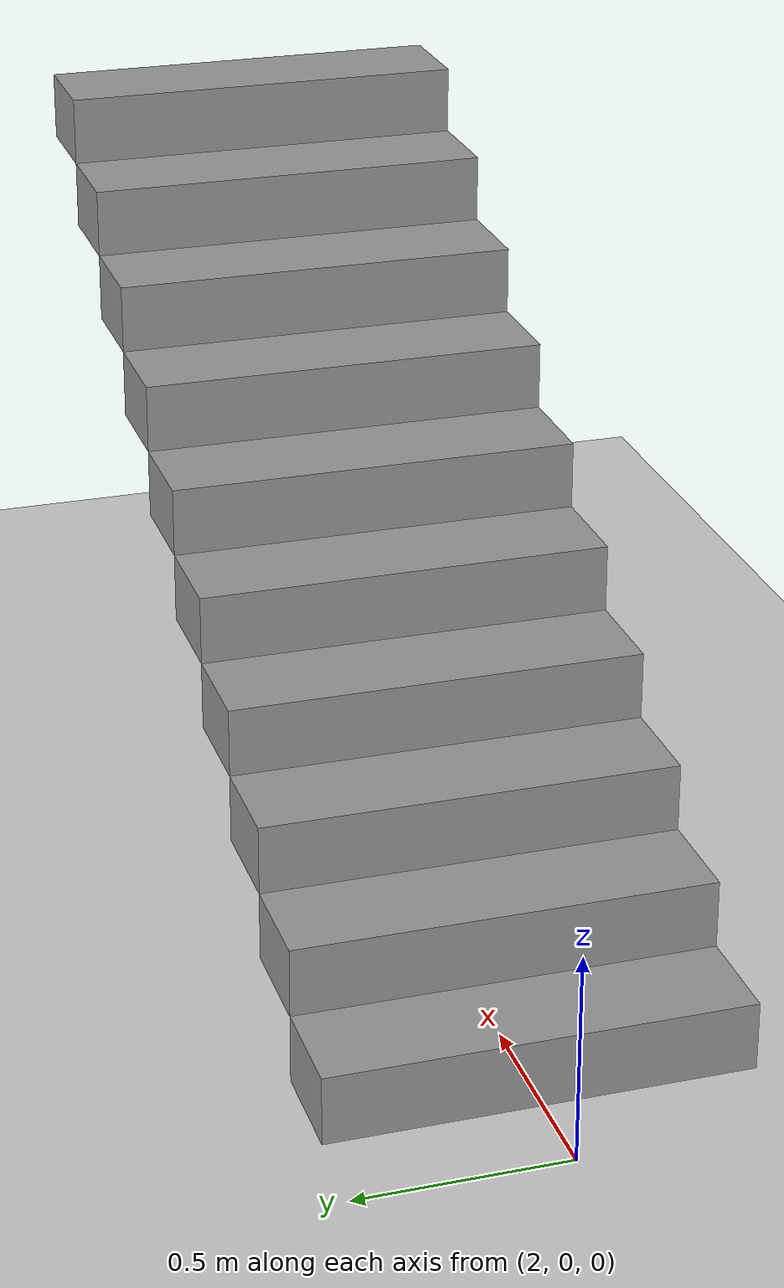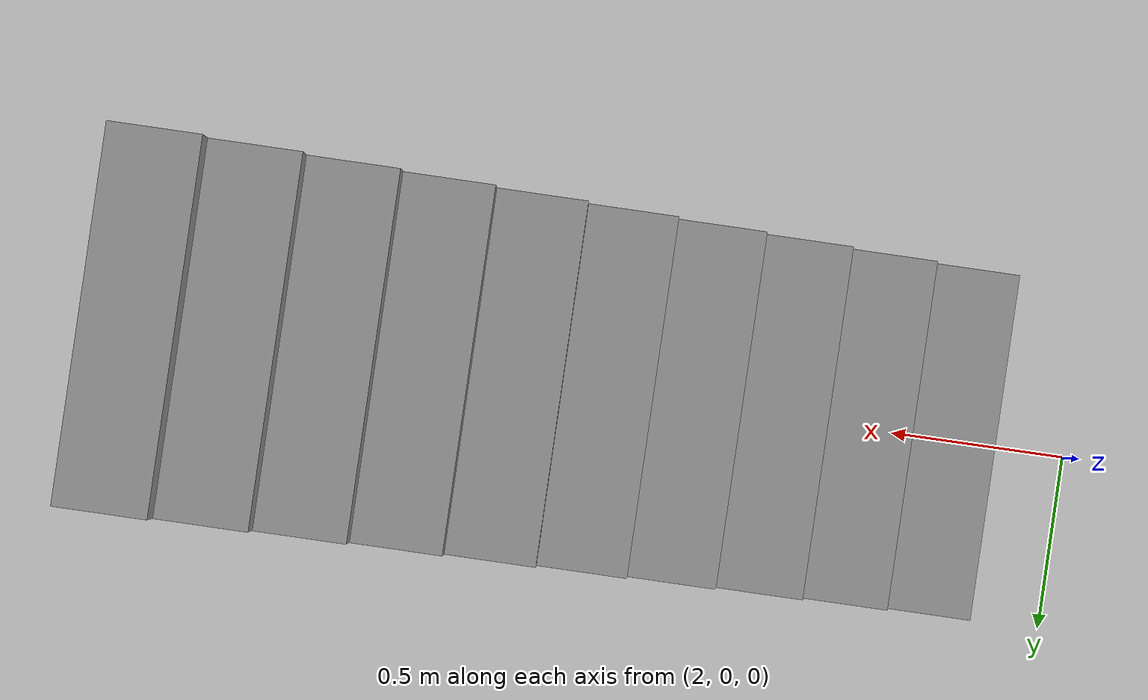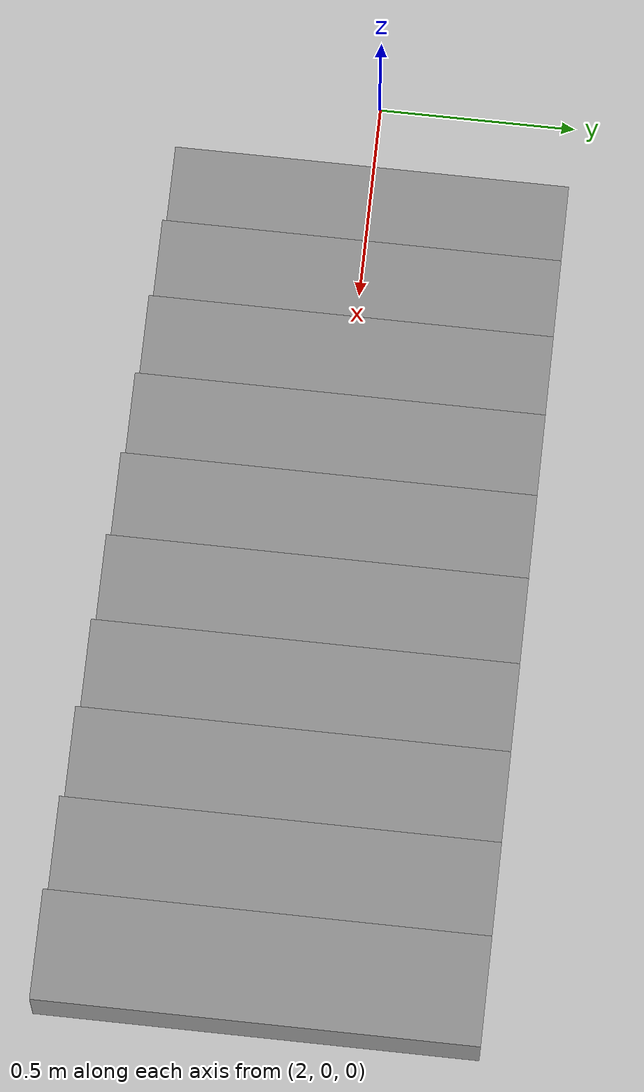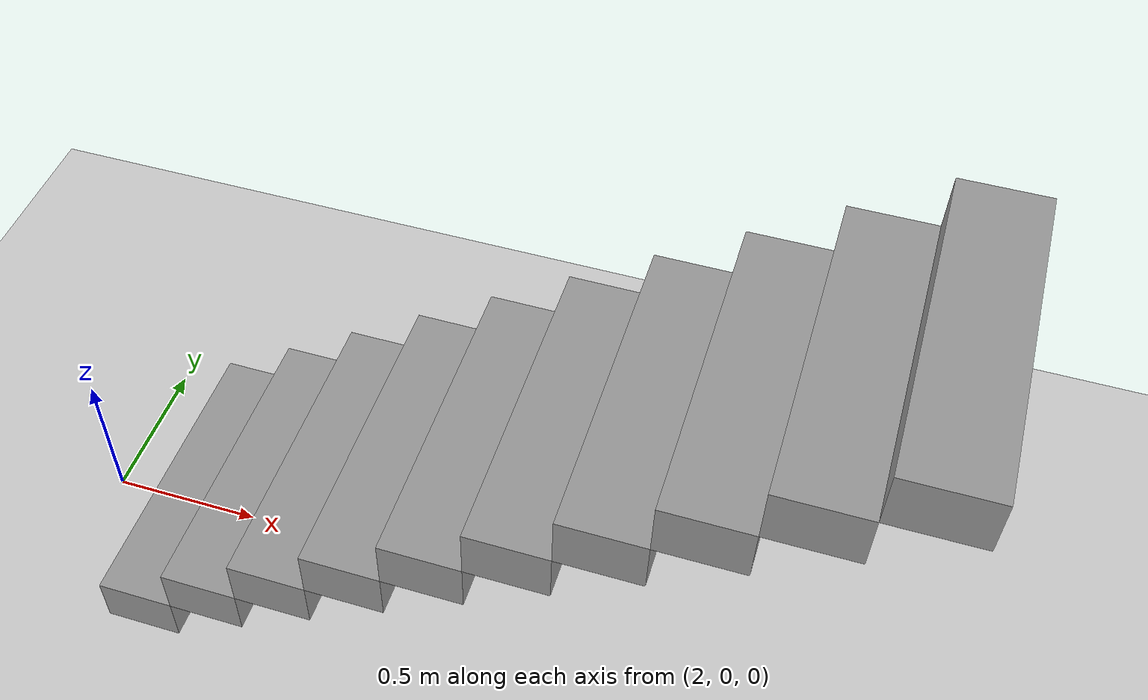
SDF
<sdf version='1.6'>
  <world name='default'>
    <physics name='default_physics' default='0' type='ode'>
      <max_step_size>0.0003</max_step_size>
      <real_time_update_rate>-1</real_time_update_rate>
      <ode>
        <solver>
          <iters>300</iters>
          <type>quick</type>
          <sor>1.3</sor>
          <use_dynamic_moi_rescaling>0</use_dynamic_moi_rescaling>
        </solver>
        <constraints>
          <cfm>0</cfm>
          <erp>0.2</erp>
          <contact_max_correcting_vel>100</contact_max_correcting_vel>
          <contact_surface_layer>0.001</contact_surface_layer>
        </constraints>
      </ode>
      <real_time_factor>1</real_time_factor>
    </physics>
    <model name='ground_plane'>
      <static>1</static>
      <link name='link'>
        <collision name='collision'>
          <geometry>
            <plane>
              <normal>0 0 1</normal>
              <size>100 100</size>
            </plane>
          </geometry>
          <surface>
            <contact>
              <collide_bitmask>65535</collide_bitmask>
              <ode/>
            </contact>
            <friction>
              <ode>
                <mu>100</mu>
                <mu2>50</mu2>
              </ode>
              <torsional>
                <ode/>
              </torsional>
            </friction>
            <bounce/>
          </surface>
          <max_contacts>10</max_contacts>
        </collision>
        <visual name='visual'>
          <cast_shadows>0</cast_shadows>
          <geometry>
            <plane>
              <normal>0 0 1</normal>
              <size>100 100</size>
            </plane>
          </geometry>
          <material>
            <script>
              <uri>file://media/materials/scripts/gazebo.material</uri>
              <name>Gazebo/Grey</name>
            </script>
          </material>
        </visual>
        <self_collide>0</self_collide>
        <enable_wind>0</enable_wind>
        <kinematic>0</kinematic>
      </link>
    </model>
    <light name='sun' type='directional'>
      <cast_shadows>1</cast_shadows>
      <pose frame=''>0 0 10 0 -0 0</pose>
      <diffuse>0.8 0.8 0.8 1</diffuse>
      <specular>0.2 0.2 0.2 1</specular>
      <attenuation>
        <range>1000</range>
        <constant>0.9</constant>
        <linear>0.01</linear>
        <quadratic>0.001</quadratic>
      </attenuation>
      <direction>-0.5 0.1 -0.9</direction>
    </light>
    <gravity>0 0 -9.8</gravity>

    <model name='deeper_stairs'>
      <pose frame=''>3.46 0 0 0 -0 0</pose>
      <link name='Stairs_2'>
        <visual name='Stairs_2_Visual_0'>
          <pose frame=''>-1.125 -0 0.0833 0 -0 1.5708</pose>
          <geometry>
            <box>
              <size>1 0.25 0.1666</size>
            </box>
          </geometry>
          <material>
            <script>
              <uri>file://media/materials/scripts/gazebo.material</uri>
              <name>Gazebo/Grey</name>
            </script>
            <ambient>1 1 1 1</ambient>
          </material>
          <meta>
            <layer>0</layer>
          </meta>
        </visual>
        <collision name='Stairs_2_Collision_0'>
          <geometry>
            <box>
              <size>1 0.25 0.1666</size>
            </box>
          </geometry>
          <pose frame=''>-1.125 -0 0.0833 0 -0 1.5708</pose>
          <max_contacts>10</max_contacts>
          <surface>
            <contact>
              <ode/>
            </contact>
            <bounce/>
            <friction>
              <torsional>
                <ode/>
              </torsional>
              <ode/>
            </friction>
          </surface>
        </collision>
        <visual name='Stairs_2_Visual_1'>
          <pose frame=''>-0.875 -0 0.2499 0 -0 1.5708</pose>
          <geometry>
            <box>
              <size>1 0.25 0.1666</size>
            </box>
          </geometry>
          <material>
            <script>
              <uri>file://media/materials/scripts/gazebo.material</uri>
              <name>Gazebo/Grey</name>
            </script>
            <ambient>1 1 1 1</ambient>
          </material>
          <meta>
            <layer>0</layer>
          </meta>
        </visual>
        <collision name='Stairs_2_Collision_1'>
          <geometry>
            <box>
              <size>1 0.25 0.1666</size>
            </box>
          </geometry>
          <pose frame=''>-0.875 -0 0.2499 0 -0 1.5708</pose>
          <max_contacts>10</max_contacts>
          <surface>
            <contact>
              <ode/>
            </contact>
            <bounce/>
            <friction>
              <torsional>
                <ode/>
              </torsional>
              <ode/>
            </friction>
          </surface>
        </collision>
        <visual name='Stairs_2_Visual_2'>
          <pose frame=''>-0.625 -0 0.4165 0 -0 1.5708</pose>
          <geometry>
            <box>
              <size>1 0.25 0.1666</size>
            </box>
          </geometry>
          <material>
            <script>
              <uri>file://media/materials/scripts/gazebo.material</uri>
              <name>Gazebo/Grey</name>
            </script>
            <ambient>1 1 1 1</ambient>
          </material>
          <meta>
            <layer>0</layer>
          </meta>
        </visual>
        <collision name='Stairs_2_Collision_2'>
          <geometry>
            <box>
              <size>1 0.25 0.1666</size>
            </box>
          </geometry>
          <pose frame=''>-0.625 -0 0.4165 0 -0 1.5708</pose>
          <max_contacts>10</max_contacts>
          <surface>
            <contact>
              <ode/>
            </contact>
            <bounce/>
            <friction>
              <torsional>
                <ode/>
              </torsional>
              <ode/>
            </friction>
          </surface>
        </collision>
        <visual name='Stairs_2_Visual_3'>
          <pose frame=''>-0.375 -0 0.5831 0 -0 1.5708</pose>
          <geometry>
            <box>
              <size>1 0.25 0.1666</size>
            </box>
          </geometry>
          <material>
            <script>
              <uri>file://media/materials/scripts/gazebo.material</uri>
              <name>Gazebo/Grey</name>
            </script>
            <ambient>1 1 1 1</ambient>
          </material>
          <meta>
            <layer>0</layer>
          </meta>
        </visual>
        <collision name='Stairs_2_Collision_3'>
          <geometry>
            <box>
              <size>1 0.25 0.1666</size>
            </box>
          </geometry>
          <pose frame=''>-0.375 -0 0.5831 0 -0 1.5708</pose>
          <max_contacts>10</max_contacts>
          <surface>
            <contact>
              <ode/>
            </contact>
            <bounce/>
            <friction>
              <torsional>
                <ode/>
              </torsional>
              <ode/>
            </friction>
          </surface>
        </collision>
        <visual name='Stairs_2_Visual_4'>
          <pose frame=''>-0.125 -0 0.7497 0 -0 1.5708</pose>
          <geometry>
            <box>
              <size>1 0.25 0.1666</size>
            </box>
          </geometry>
          <material>
            <script>
              <uri>file://media/materials/scripts/gazebo.material</uri>
              <name>Gazebo/Grey</name>
            </script>
            <ambient>1 1 1 1</ambient>
          </material>
          <meta>
            <layer>0</layer>
          </meta>
        </visual>
        <collision name='Stairs_2_Collision_4'>
          <geometry>
            <box>
              <size>1 0.25 0.1666</size>
            </box>
          </geometry>
          <pose frame=''>-0.125 -0 0.7497 0 -0 1.5708</pose>
          <max_contacts>10</max_contacts>
          <surface>
            <contact>
              <ode/>
            </contact>
            <bounce/>
            <friction>
              <torsional>
                <ode/>
              </torsional>
              <ode/>
            </friction>
          </surface>
        </collision>
        <visual name='Stairs_2_Visual_5'>
          <pose frame=''>0.125 -0 0.9163 0 -0 1.5708</pose>
          <geometry>
            <box>
              <size>1 0.25 0.1666</size>
            </box>
          </geometry>
          <material>
            <script>
              <uri>file://media/materials/scripts/gazebo.material</uri>
              <name>Gazebo/Grey</name>
            </script>
            <ambient>1 1 1 1</ambient>
          </material>
          <meta>
            <layer>0</layer>
          </meta>
        </visual>
        <collision name='Stairs_2_Collision_5'>
          <geometry>
            <box>
              <size>1 0.25 0.1666</size>
            </box>
          </geometry>
          <pose frame=''>0.125 -0 0.9163 0 -0 1.5708</pose>
          <max_contacts>10</max_contacts>
          <surface>
            <contact>
              <ode/>
            </contact>
            <bounce/>
            <friction>
              <torsional>
                <ode/>
              </torsional>
              <ode/>
            </friction>
          </surface>
        </collision>
        <visual name='Stairs_2_Visual_6'>
          <pose frame=''>0.375 -0 1.0829 0 -0 1.5708</pose>
          <geometry>
            <box>
              <size>1 0.25 0.1666</size>
            </box>
          </geometry>
          <material>
            <script>
              <uri>file://media/materials/scripts/gazebo.material</uri>
              <name>Gazebo/Grey</name>
            </script>
            <ambient>1 1 1 1</ambient>
          </material>
          <meta>
            <layer>0</layer>
          </meta>
        </visual>
        <collision name='Stairs_2_Collision_6'>
          <geometry>
            <box>
              <size>1 0.25 0.1666</size>
            </box>
          </geometry>
          <pose frame=''>0.375 -0 1.0829 0 -0 1.5708</pose>
          <max_contacts>10</max_contacts>
          <surface>
            <contact>
              <ode/>
            </contact>
            <bounce/>
            <friction>
              <torsional>
                <ode/>
              </torsional>
              <ode/>
            </friction>
          </surface>
        </collision>
        <visual name='Stairs_2_Visual_7'>
          <pose frame=''>0.625 -0 1.2495 0 -0 1.5708</pose>
          <geometry>
            <box>
              <size>1 0.25 0.1666</size>
            </box>
          </geometry>
          <material>
            <script>
              <uri>file://media/materials/scripts/gazebo.material</uri>
              <name>Gazebo/Grey</name>
            </script>
            <ambient>1 1 1 1</ambient>
          </material>
          <meta>
            <layer>0</layer>
          </meta>
        </visual>
        <collision name='Stairs_2_Collision_7'>
          <geometry>
            <box>
              <size>1 0.25 0.1666</size>
            </box>
          </geometry>
          <pose frame=''>0.625 -0 1.2495 0 -0 1.5708</pose>
          <max_contacts>10</max_contacts>
          <surface>
            <contact>
              <ode/>
            </contact>
            <bounce/>
            <friction>
              <torsional>
                <ode/>
              </torsional>
              <ode/>
            </friction>
          </surface>
        </collision>
        <visual name='Stairs_2_Visual_8'>
          <pose frame=''>0.875 0 1.4161 0 -0 1.5708</pose>
          <geometry>
            <box>
              <size>1 0.25 0.1666</size>
            </box>
          </geometry>
          <material>
            <script>
              <uri>file://media/materials/scripts/gazebo.material</uri>
              <name>Gazebo/Grey</name>
            </script>
            <ambient>1 1 1 1</ambient>
          </material>
          <meta>
            <layer>0</layer>
          </meta>
        </visual>
        <collision name='Stairs_2_Collision_8'>
          <geometry>
            <box>
              <size>1 0.25 0.1666</size>
            </box>
          </geometry>
          <pose frame=''>0.875 0 1.4161 0 -0 1.5708</pose>
          <max_contacts>10</max_contacts>
          <surface>
            <contact>
              <ode/>
            </contact>
            <bounce/>
            <friction>
              <torsional>
                <ode/>
              </torsional>
              <ode/>
            </friction>
          </surface>
        </collision>
        <visual name='Stairs_2_Visual_9'>
          <pose frame=''>1.125 0 1.5827 0 -0 1.5708</pose>
          <geometry>
            <box>
              <size>1 0.25 0.1666</size>
            </box>
          </geometry>
          <material>
            <script>
              <uri>file://media/materials/scripts/gazebo.material</uri>
              <name>Gazebo/Grey</name>
            </script>
            <ambient>1 1 1 1</ambient>
          </material>
          <meta>
            <layer>0</layer>
          </meta>
        </visual>
        <collision name='Stairs_2_Collision_9'>
          <geometry>
            <box>
              <size>1 0.25 0.1666</size>
            </box>
          </geometry>
          <pose frame=''>1.125 0 1.5827 0 -0 1.5708</pose>
          <max_contacts>10</max_contacts>
          <surface>
            <contact>
              <ode/>
            </contact>
            <bounce/>
            <friction>
              <torsional>
                <ode/>
              </torsional>
              <ode/>
            </friction>
          </surface>
        </collision>
        <self_collide>0</self_collide>
        <enable_wind>0</enable_wind>
        <kinematic>0</kinematic>
      </link>
      <static>1</static>
    </model>
  </world>
</sdf>
